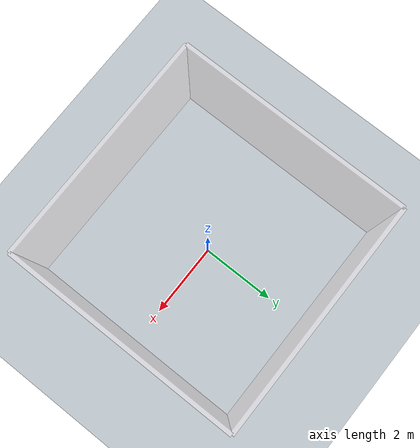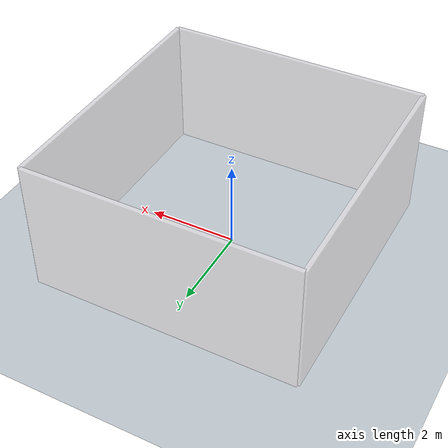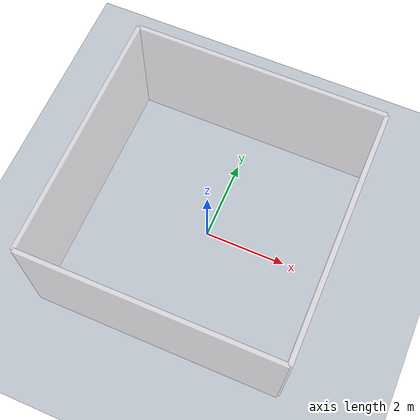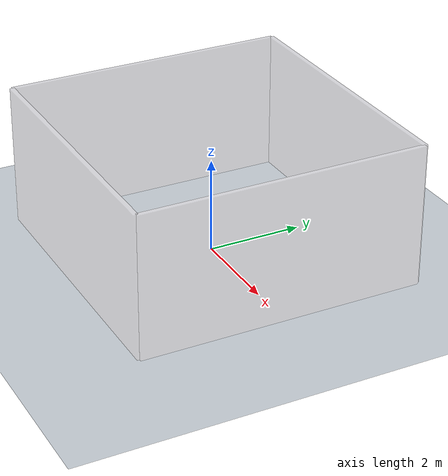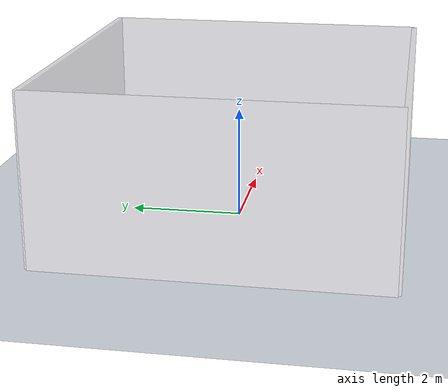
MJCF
<mujoco model="Drone scene with walls">
  <option integrator="RK4" density="1.225" viscosity="1.8e-5" timestep="0.001"/>
  <compiler inertiafromgeom="false" autolimits="true"/>
  <statistic center="0 0 1" extent="3"/>

  <visual>
    <headlight diffuse="0.6 0.6 0.6" ambient="0.5 0.5 0.5" specular="0 0 0"/>
    <rgba haze="0.15 0.25 0.35 0" fog="1 1 1 0"/>
    <map fogstart="0" fogend="0"/>
    <global azimuth="0" elevation="-20" ellipsoidinertia="true"/>
  </visual>

  <asset>
    <texture type="skybox" builtin="gradient" rgb1="0.3 0.5 0.7" rgb2="0 0 0"
             width="512" height="3072"/>
    <texture type="2d" name="groundplane" builtin="checker" mark="edge"
             rgb1="0.2 0.3 0.4" rgb2="0.1 0.2 0.3"
             markrgb="0.8 0.8 0.8" width="512" height="512"/>
    <material name="groundplane" texture="groundplane" texuniform="true"
              texrepeat="2 2" reflectance="0.2"/>
    <material name="wall" rgba="0.6 0.6 0.65 0.4"/>
  </asset>

  <worldbody>
    <light pos="0 0 3" dir="0 0 -1" directional="true"/>
    <geom name="floor" size="0 0 0.05" type="plane" material="groundplane"/>

    <!-- Room walls (3m x 3m, centered at origin, 2m tall) -->
    <geom name="wall_north" type="box" size="3 0.05 2" pos="0 3 1"
          material="wall" contype="1" conaffinity="1"/>
    <geom name="wall_south" type="box" size="3 0.05 2" pos="0 -3 1"
          material="wall" contype="1" conaffinity="1"/>
    <geom name="wall_east"  type="box" size="0.05 3 2" pos="3 0 1"
          material="wall" contype="1" conaffinity="1"/>
    <geom name="wall_west"  type="box" size="0.05 3 2" pos="-3 0 1"
          material="wall" contype="1" conaffinity="1"/>
  </worldbody>

</mujoco>
